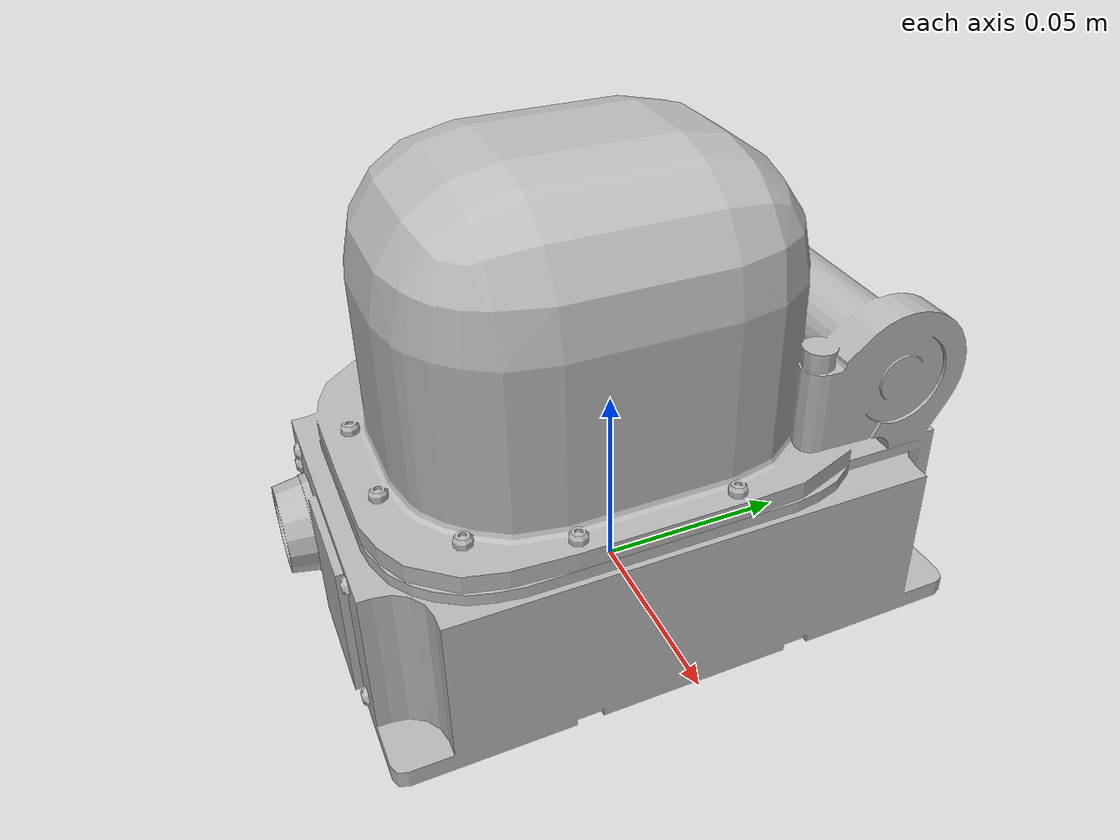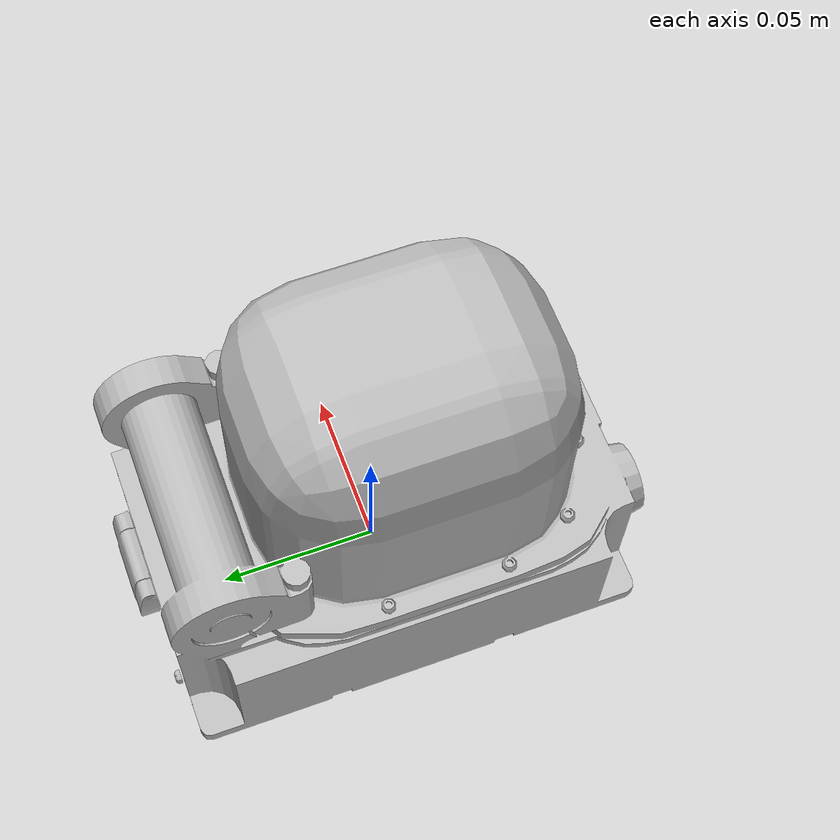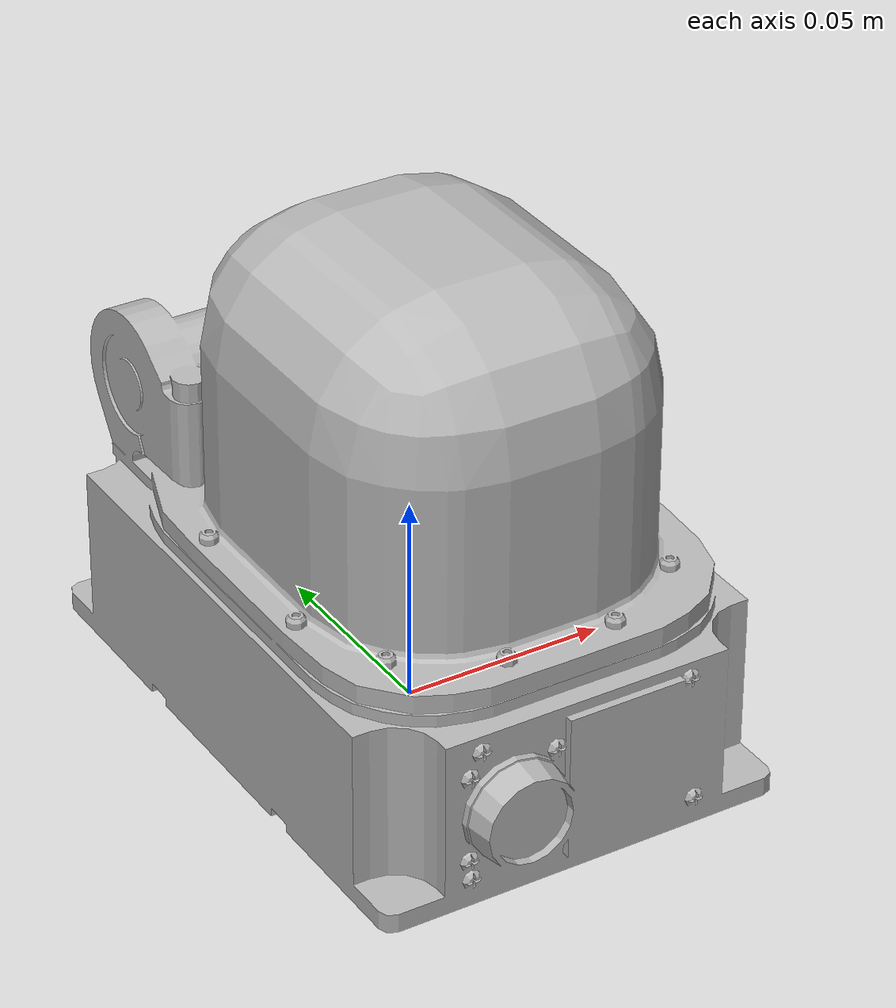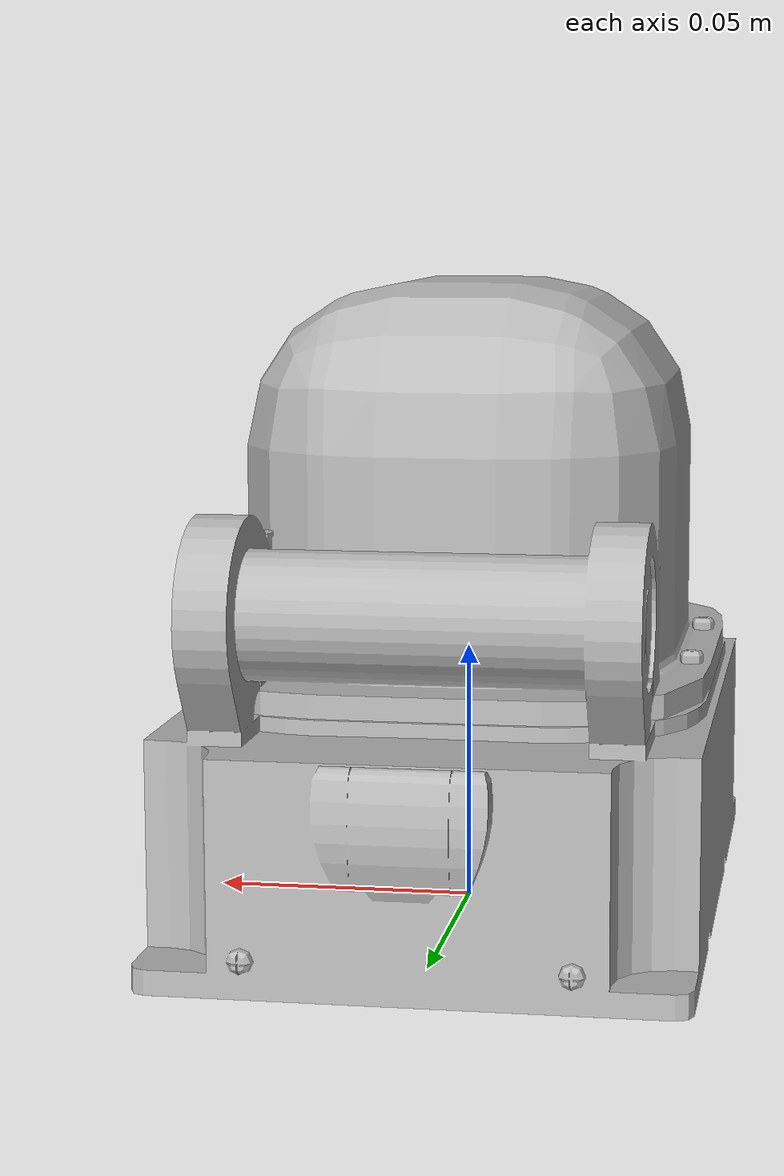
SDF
<?xml version="1.0"?>
<sdf version="1.6">
  <model name="flight_data_recorder">
    <static>false</static>
    <link name="base_link">
      <inertial>
        <mass>1</mass>
        <inertia>
          <ixx>0.04</ixx>
          <ixy>0.0</ixy>
          <ixz>0.0</ixz>
          <iyy>0.04</iyy>
          <iyz>0.0</iyz>
          <izz>0.04</izz>
        </inertia>
      </inertial>
      <visual name="visual">
        <geometry>
           <mesh>
            <scale> 2.0 2.0 2.0 </scale>
            <uri>file://flight_data_recorder/meshes/flight_data_recorder.dae</uri>
          </mesh>
        </geometry>
      </visual>
      <collision name="collision">

        <pose>0 0 0 0 0 0</pose>
        <geometry>
          <mesh>
            <scale> 2.0 2.0 2.0 </scale>
            <uri>file://flight_data_recorder/meshes/flight_data_recorder_collision.dae</uri>
          </mesh>
        </geometry>
      </collision>
    </link>
  </model>
</sdf>
